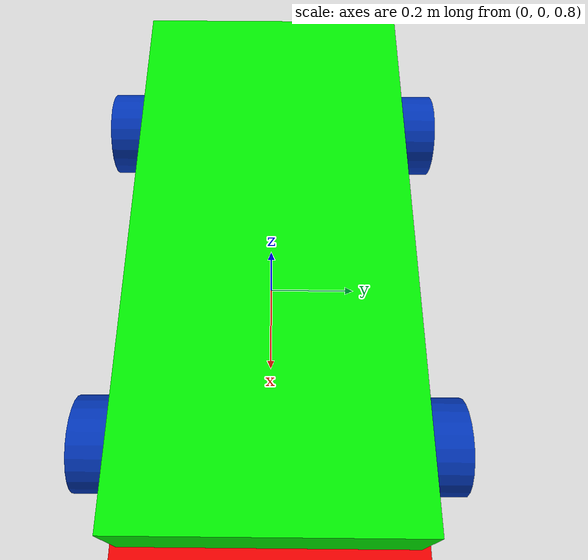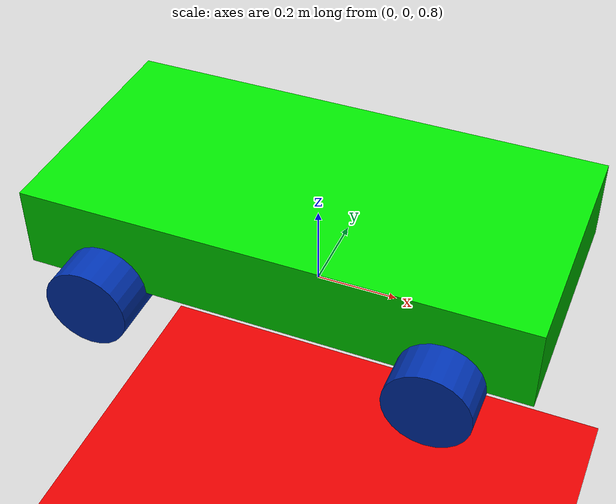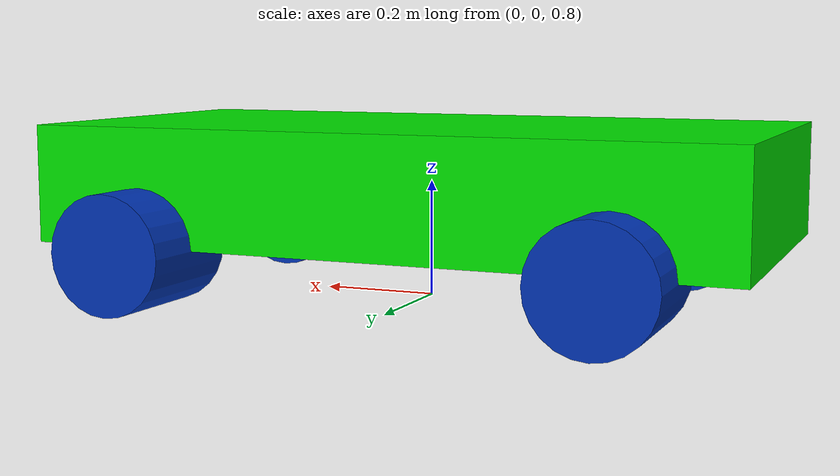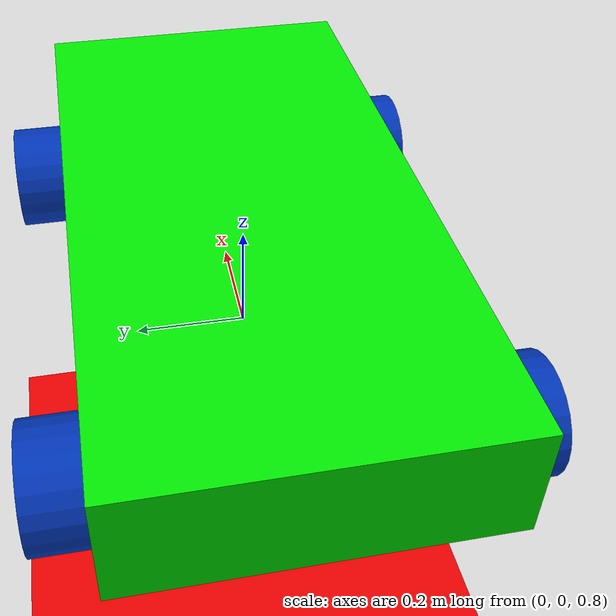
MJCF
<mujoco>
   <!--add gravity?-->
   <option gravity="0 0 -9"/>

    <worldbody>
        <light diffuse=".5 .5 .5" pos="0 0 3" dir="0 0 -1"/>

        <geom type="plane" size="10 10 0.1" rgba=".9 0 0 1"/>

        <body pos="0 0 1">
			<joint type="free"/>
			<geom type="box" size=".6 .3 .1" rgba="0 .9 0 1"/>

            <!-- back left leg -->
            <body pos="0.4 -0.3 -0.1" euler='90 0 0'>
			    <joint name="back_left_leg" type="hinge" axis="0 0 1"/>
			    <geom type="cylinder" size=".1 .1 " rgba="0 0.2 0.7 1"/>
		    </body>

            <!-- back right leg -->
            <body pos="0.4 0.3 -0.1" euler='90 0 0'>
			    <joint name="back_right_leg" type="hinge" axis="0 0 1"/>
			    <geom type="cylinder" size=".1 .1 " rgba="0 0.2 0.7 1"/>
		    </body>

            <!-- front left leg -->
            <body pos="-0.4 -0.3 -0.1" euler='90 0 0'>
			    <joint name="front_left_leg" type="hinge" axis="0 0 1"/>
			    <geom type="cylinder" size=".1 .1 " rgba="0 0.2 0.7 1"/>
		    </body>

            <!-- front right leg -->
            <body pos="-0.4  0.3 -0.1" euler='90 0 0'>
			    <joint name="front_right_leg" type="hinge" axis="0 0 1"/>
			    <geom type="cylinder" size=".1 .1 " rgba="0 0.2 0.7 1"/>
		    </body>

		</body>

    </worldbody>

    <actuator>
        <motor joint="back_left_leg" name="blg"/>
        <motor joint="back_right_leg" name="brg"/>
        <motor joint="front_left_leg" name="flg"/>
        <motor joint="front_right_leg" name="frg"/>
    </actuator>
</mujoco>
